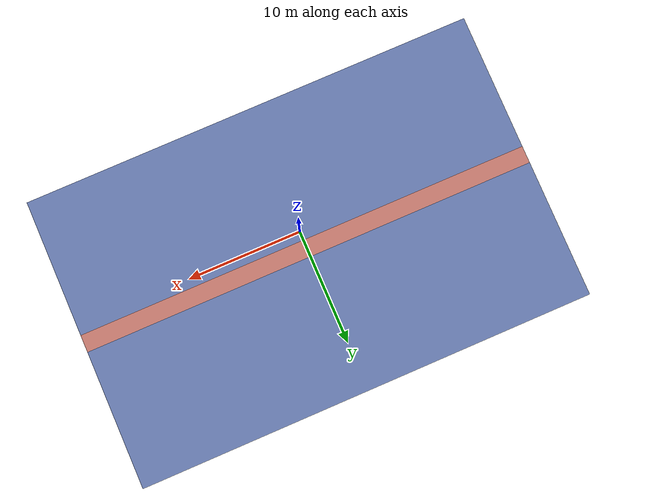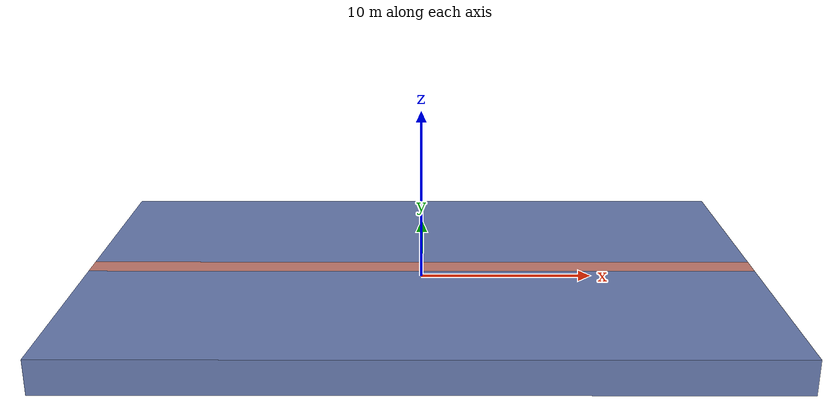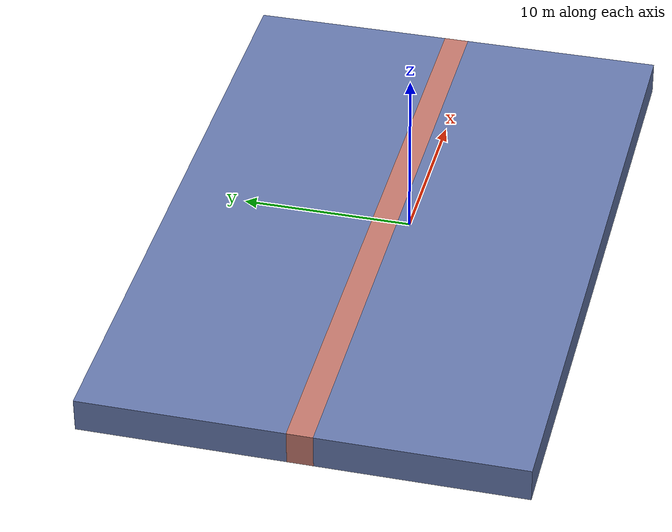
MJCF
<mujoco model="friction_floor_midpatch">
  <compiler angle="radian" />
  <asset>
    <texture name='a' builtin="gradient" height="100" rgb1="1 1 1" rgb2="0 0 0" type="skybox" width="100"/>
    <texture name="texplane0" type="2d" builtin="checker" rgb1="0.0 0.0 0.36" rgb2="0.79 .94 .99" width="100" height="100" mark="cross" markrgb=".8 .8 .8"/>
    <texture name="texplane1" type="2d" builtin="checker" rgb1=".52 .08 0" rgb2="1 .85 .84" width="100" height="100" mark="cross" markrgb=".8 .8 .8"/>
    <texture name="texplane2" type="2d" builtin="checker" rgb1="0.0 0.0 0.36" rgb2="0.79 .94 .99" width="100" height="100" mark="cross" markrgb=".8 .8 .8"/>
    <texture name="texplane3" type="2d" builtin="checker" rgb1="0 0 0" rgb2="0.8 0.0 0.8" width="100" height="100" mark="cross" markrgb=".8 .8 .8"/>
    <texture name="texplane4" type="2d" builtin="flat" rgb1="0.1215686275 0.4470588235 0.6" width="100" height="100"/>
    <material name="matplane0" reflectance="0.2" texture="texplane0" texrepeat="1 1" texuniform="true"/>
    <material name="matplane1" reflectance="0.2" texture="texplane1" texrepeat="1 1" texuniform="true"/>
    <material name="matplane2" reflectance="0.2" texture="texplane2" texrepeat="1 1" texuniform="true"/>
    <material name="matplane3" reflectance="0.2" texture="texplane3" texrepeat="1 1" texuniform="true"/>
    <material name="matplane4" reflectance="0.2" texture="texplane4" texrepeat="1 1" texuniform="true"/>
  </asset>
  <visual>
    <headlight ambient="0.6 0.6 0.6" diffuse="0.5 0.5 0.5" specular="0.2 0.2 0.2"/>
    <map znear="0.001" />
  </visual>
  <worldbody>
    <!-- Floor XY -->
    <geom contype="1" friction="1 0.0 0.001" name="floor00" pos="0 -5.25 -1" euler="0 0 0" size="20 6 1" type="box" material="matplane0" condim="6"/>
    <geom contype="1" friction="1 0.0 0.010" name="floor01" pos="0 1.5 -1" euler="0 0 0" size="20 .75 1" type="box" material="matplane1" condim="6"/>
    <geom contype="1" friction="1 0.0 0.001" name="floor02" pos="0 8.25 -1" euler="0 0 0" size="20 6 1" type="box" material="matplane0" condim="6"/>
  </worldbody>
</mujoco>
